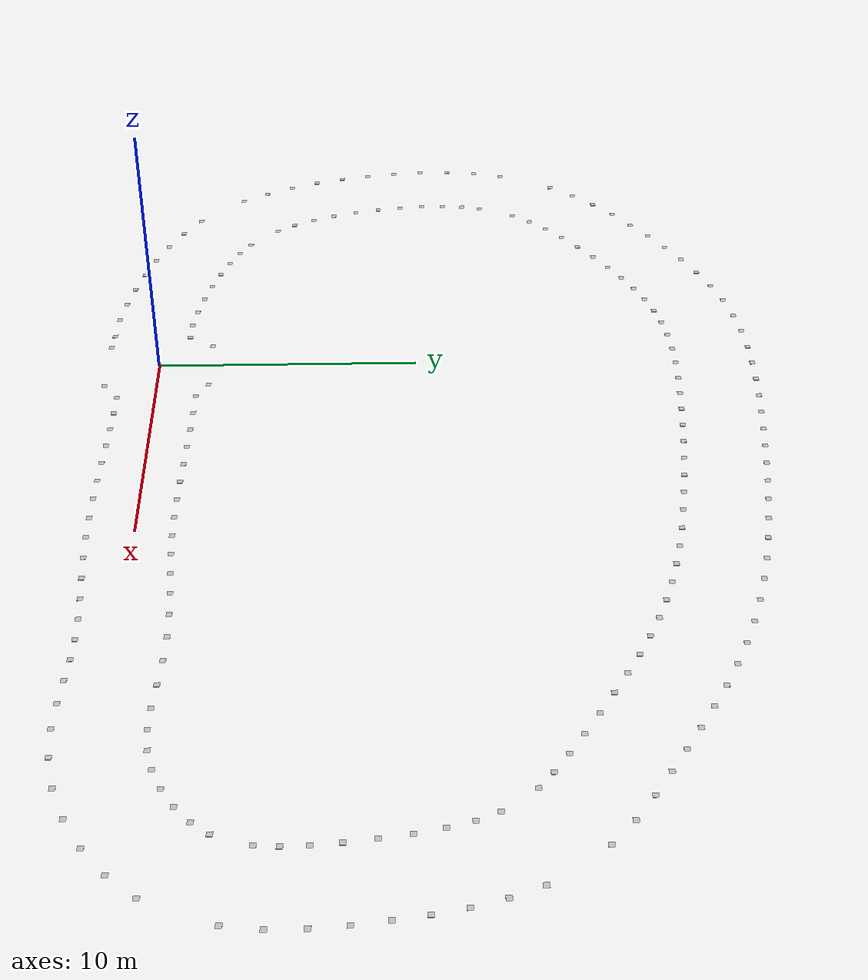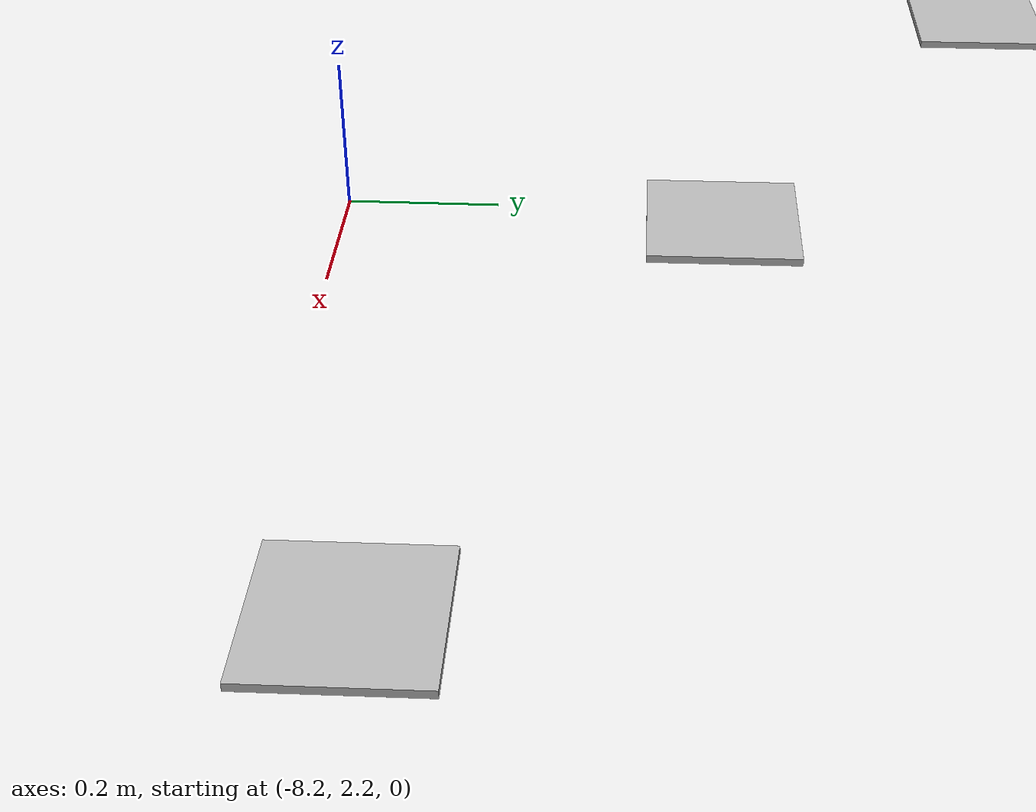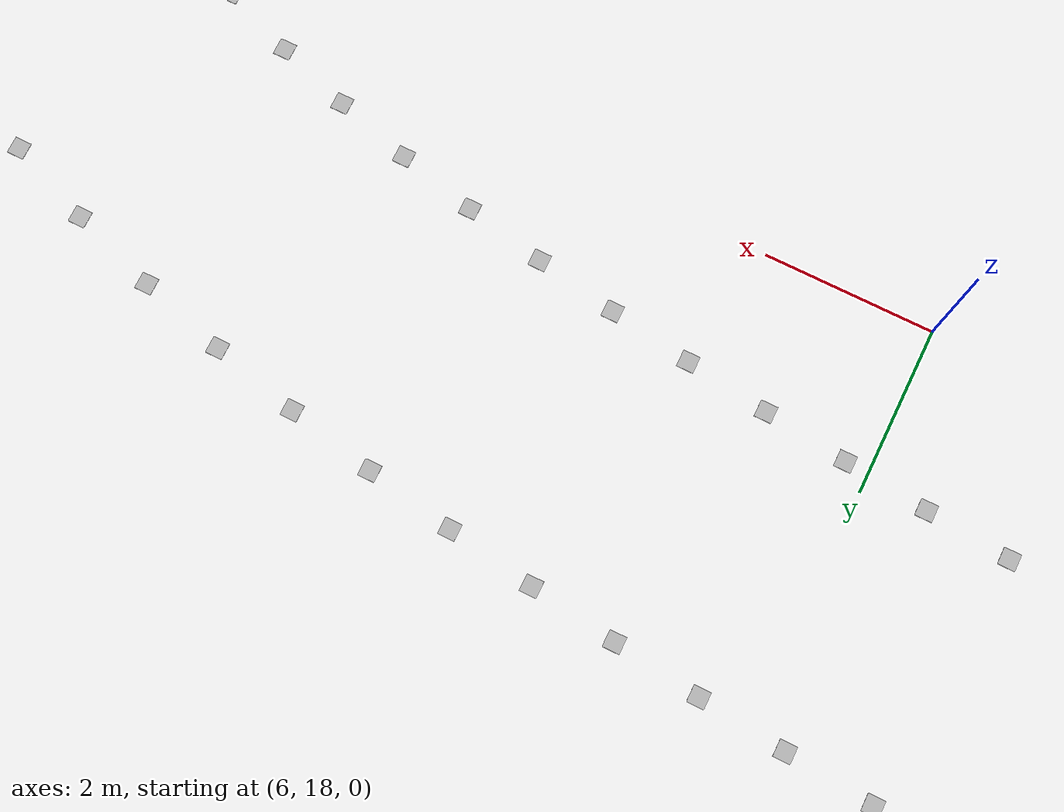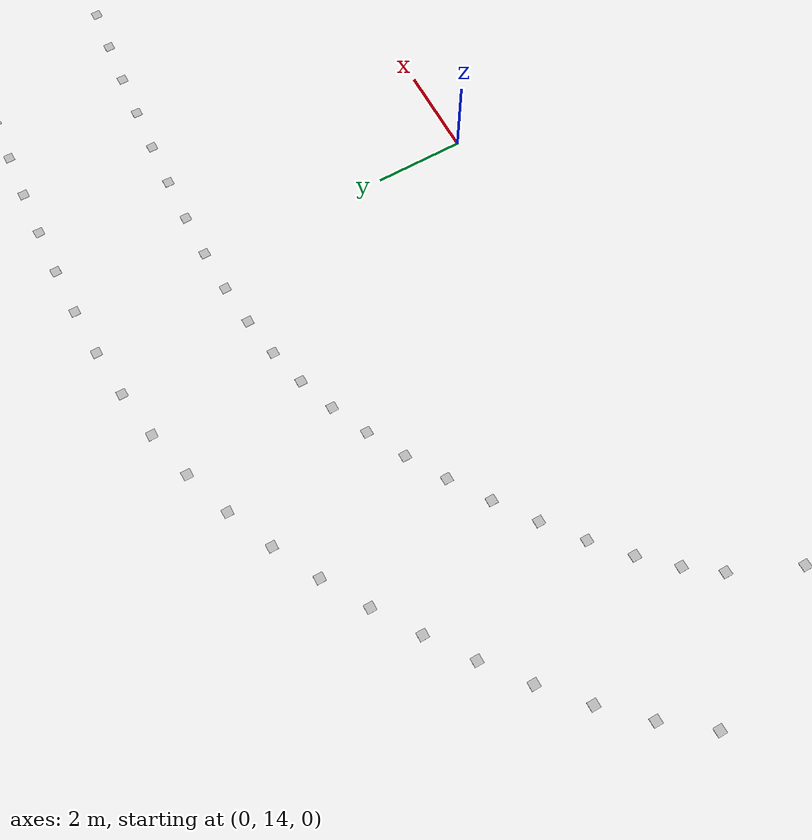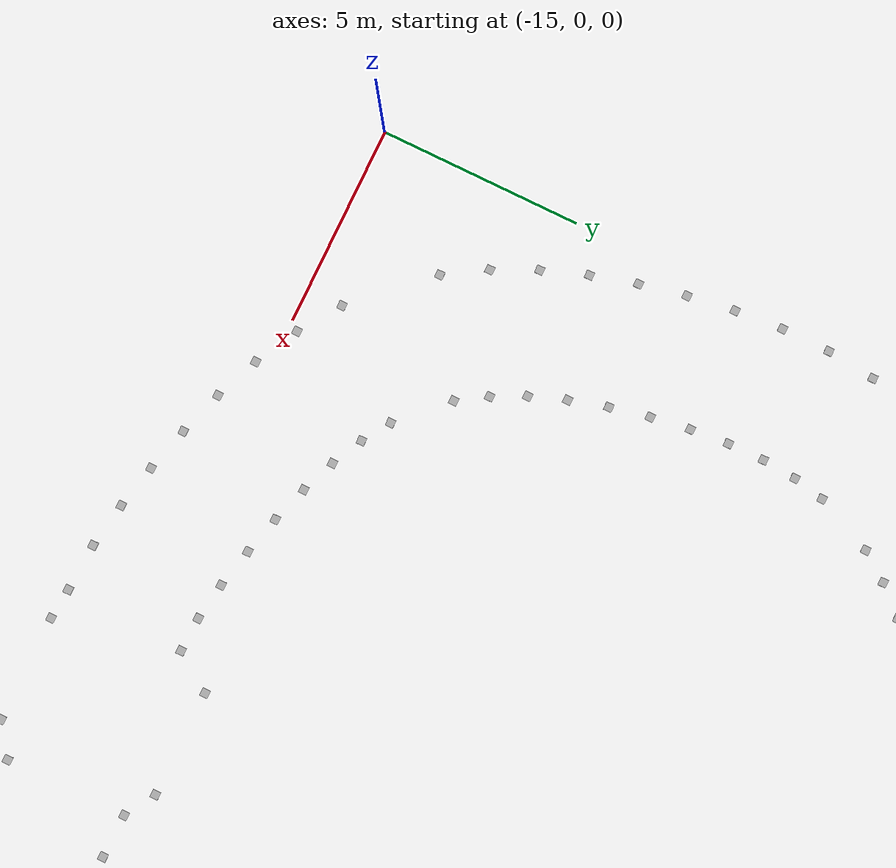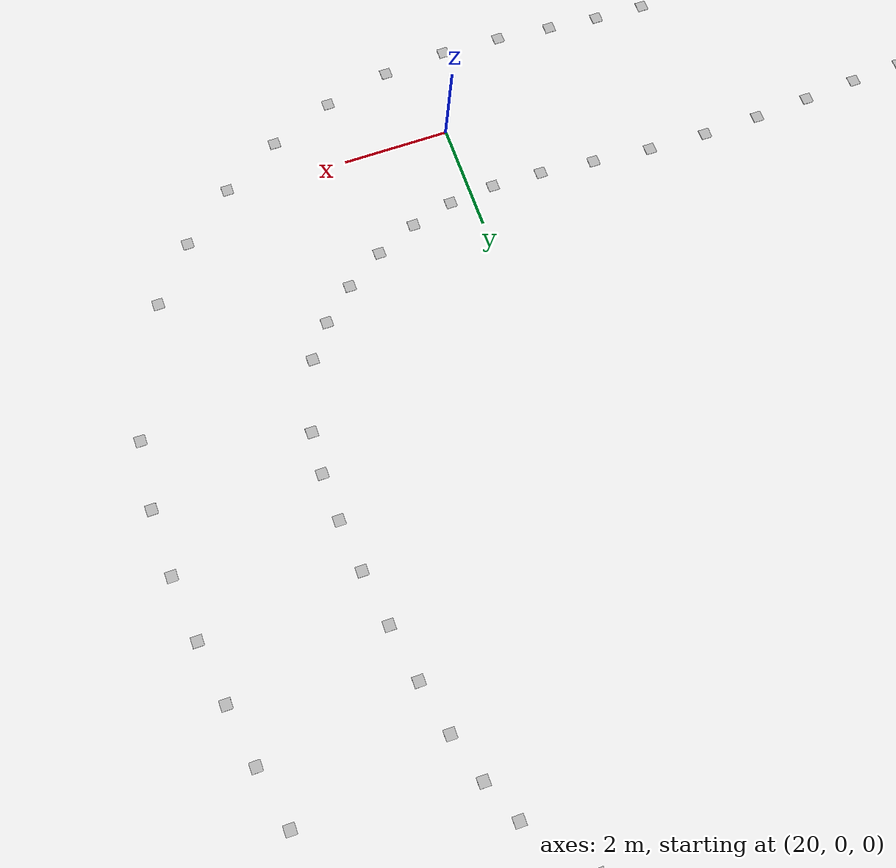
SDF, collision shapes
<?xml version='1.0' encoding='UTF-8'?>
<sdf version="1.4">
  <model name="some track">
    <include>
      <uri>model://cone_yellow</uri>
      <pose>2.0716251201298137 -1.4441487777763915 0 0 0 0</pose>
      <name>cone_right</name>
    </include>
    <include>
      <uri>model://cone_yellow</uri>
      <pose>3.061845030162147 -1.4576160737577932 0 0 0 0</pose>
      <name>cone_right</name>
    </include>
    <include>
      <uri>model://cone_yellow</uri>
      <pose>4.062345882485207 -1.4886577075095835 0 0 0 0</pose>
      <name>cone_right</name>
    </include>
    <include>
      <uri>model://cone_yellow</uri>
      <pose>5.073162139944026 -1.5307270625094536 0 0 0 0</pose>
      <name>cone_right</name>
    </include>
    <include>
      <uri>model://cone_yellow</uri>
      <pose>6.094304778852414 -1.5770616640211572 0 0 0 0</pose>
      <name>cone_right</name>
    </include>
    <include>
      <uri>model://cone_yellow</uri>
      <pose>7.125795829590808 -1.6206844722391436 0 0 0 0</pose>
      <name>cone_right</name>
    </include>
    <include>
      <uri>model://cone_yellow</uri>
      <pose>8.167680632697863 -1.654404963001182 0 0 0 0</pose>
      <name>cone_right</name>
    </include>
    <include>
      <uri>model://cone_yellow</uri>
      <pose>9.220017988063077 -1.6708182171101507 0 0 0 0</pose>
      <name>cone_right</name>
    </include>
    <include>
      <uri>model://cone_yellow</uri>
      <pose>10.282848042903979 -1.6623034479508214 0 0 0 0</pose>
      <name>cone_right</name>
    </include>
    <include>
      <uri>model://cone_yellow</uri>
      <pose>11.35571622601062 -1.6213299625687487 0 0 0 0</pose>
      <name>cone_right</name>
    </include>
    <include>
      <uri>model://cone_yellow</uri>
      <pose>12.421343697211151 -1.5530957398543737 0 0 0 0</pose>
      <name>cone_right</name>
    </include>
    <include>
      <uri>model://cone_yellow</uri>
      <pose>13.456973326948876 -1.4803363522671682 0 0 0 0</pose>
      <name>cone_right</name>
    </include>
    <include>
      <uri>model://cone_yellow</uri>
      <pose>14.460785571185642 -1.4251545002188355 0 0 0 0</pose>
      <name>cone_right</name>
    </include>
    <include>
      <uri>model://cone_yellow</uri>
      <pose>15.432162505420052 -1.4076473400622496 0 0 0 0</pose>
      <name>cone_right</name>
    </include>
    <include>
      <uri>model://cone_yellow</uri>
      <pose>16.3709793985687 -1.4456499326871088 0 0 0 0</pose>
      <name>cone_right</name>
    </include>
    <include>
      <uri>model://cone_yellow</uri>
      <pose>17.31671447327752 -1.532724382322282 0 0 0 0</pose>
      <name>cone_right</name>
    </include>
    <include>
      <uri>model://cone_yellow</uri>
      <pose>18.340652942843306 -1.6250135775647694 0 0 0 0</pose>
      <name>cone_right</name>
    </include>
    <include>
      <uri>model://cone_yellow</uri>
      <pose>19.451897274874245 -1.6648254026640625 0 0 0 0</pose>
      <name>cone_right</name>
    </include>
    <include>
      <uri>model://cone_yellow</uri>
      <pose>20.651843758167303 -1.5799661499556616 0 0 0 0</pose>
      <name>cone_right</name>
    </include>
    <include>
      <uri>model://cone_yellow</uri>
      <pose>21.913551635636683 -1.299011338005005 0 0 0 0</pose>
      <name>cone_right</name>
    </include>
    <include>
      <uri>model://cone_yellow</uri>
      <pose>23.134147333511585 -0.8213676918417518 0 0 0 0</pose>
      <name>cone_right</name>
    </include>
    <include>
      <uri>model://cone_yellow</uri>
      <pose>24.26431419130211 -0.16816303440160096 0 0 0 0</pose>
      <name>cone_right</name>
    </include>
    <include>
      <uri>model://cone_yellow</uri>
      <pose>25.272579495454938 0.6508334851052742 0 0 0 0</pose>
      <name>cone_right</name>
    </include>
    <include>
      <uri>model://cone_yellow</uri>
      <pose>26.120314486289722 1.6343724443564824 0 0 0 0</pose>
      <name>cone_right</name>
    </include>
    <include>
      <uri>model://cone_yellow</uri>
      <pose>27.139575334451358 4.030267823359424 0 0 0 0</pose>
      <name>cone_right</name>
    </include>
    <include>
      <uri>model://cone_yellow</uri>
      <pose>27.299594686831853 5.287100350878047 0 0 0 0</pose>
      <name>cone_right</name>
    </include>
    <include>
      <uri>model://cone_yellow</uri>
      <pose>27.302394032517945 6.52083936754214 0 0 0 0</pose>
      <name>cone_right</name>
    </include>
    <include>
      <uri>model://cone_yellow</uri>
      <pose>27.206839844030117 7.71827356065557 0 0 0 0</pose>
      <name>cone_right</name>
    </include>
    <include>
      <uri>model://cone_yellow</uri>
      <pose>27.061615684889812 8.87011662512248 0 0 0 0</pose>
      <name>cone_right</name>
    </include>
    <include>
      <uri>model://cone_yellow</uri>
      <pose>26.892266175085712 9.982359311254315 0 0 0 0</pose>
      <name>cone_right</name>
    </include>
    <include>
      <uri>model://cone_yellow</uri>
      <pose>26.67027468609427 11.096155942112299 0 0 0 0</pose>
      <name>cone_right</name>
    </include>
    <include>
      <uri>model://cone_yellow</uri>
      <pose>26.358829310628582 12.207481706875793 0 0 0 0</pose>
      <name>cone_right</name>
    </include>
    <include>
      <uri>model://cone_yellow</uri>
      <pose>25.91643702714781 13.300196066862279 0 0 0 0</pose>
      <name>cone_right</name>
    </include>
    <include>
      <uri>model://cone_yellow</uri>
      <pose>24.477653171521983 15.308733241543843 0 0 0 0</pose>
      <name>cone_right</name>
    </include>
    <include>
      <uri>model://cone_yellow</uri>
      <pose>23.552839605402543 16.11880605582471 0 0 0 0</pose>
      <name>cone_right</name>
    </include>
    <include>
      <uri>model://cone_yellow</uri>
      <pose>22.593851204817366 16.809135771965824 0 0 0 0</pose>
      <name>cone_right</name>
    </include>
    <include>
      <uri>model://cone_yellow</uri>
      <pose>21.64662374100653 17.422318195047303 0 0 0 0</pose>
      <name>cone_right</name>
    </include>
    <include>
      <uri>model://cone_yellow</uri>
      <pose>20.74151680250537 17.992513445582027 0 0 0 0</pose>
      <name>cone_right</name>
    </include>
    <include>
      <uri>model://cone_yellow</uri>
      <pose>19.846047654276347 18.547137769146474 0 0 0 0</pose>
      <name>cone_right</name>
    </include>
    <include>
      <uri>model://cone_yellow</uri>
      <pose>18.938498328200364 19.088711131437183 0 0 0 0</pose>
      <name>cone_right</name>
    </include>
    <include>
      <uri>model://cone_yellow</uri>
      <pose>18.012481687637848 19.60949029684587 0 0 0 0</pose>
      <name>cone_right</name>
    </include>
    <include>
      <uri>model://cone_yellow</uri>
      <pose>17.061624678691892 20.10124937918837 0 0 0 0</pose>
      <name>cone_right</name>
    </include>
    <include>
      <uri>model://cone_yellow</uri>
      <pose>16.079677520711485 20.55524486814049 0 0 0 0</pose>
      <name>cone_right</name>
    </include>
    <include>
      <uri>model://cone_yellow</uri>
      <pose>15.061514449694114 20.962300505489935 0 0 0 0</pose>
      <name>cone_right</name>
    </include>
    <include>
      <uri>model://cone_yellow</uri>
      <pose>14.017685046074325 21.315924936638037 0 0 0 0</pose>
      <name>cone_right</name>
    </include>
    <include>
      <uri>model://cone_yellow</uri>
      <pose>12.962745353143784 21.618292049228685 0 0 0 0</pose>
      <name>cone_right</name>
    </include>
    <include>
      <uri>model://cone_yellow</uri>
      <pose>11.901647526121101 21.87612590052893 0 0 0 0</pose>
      <name>cone_right</name>
    </include>
    <include>
      <uri>model://cone_yellow</uri>
      <pose>10.838729707987193 22.096094820643074 0 0 0 0</pose>
      <name>cone_right</name>
    </include>
    <include>
      <uri>model://cone_yellow</uri>
      <pose>9.778204659344329 22.284647540875856 0 0 0 0</pose>
      <name>cone_right</name>
    </include>
    <include>
      <uri>model://cone_yellow</uri>
      <pose>8.724251800485309 22.448020448896642 0 0 0 0</pose>
      <name>cone_right</name>
    </include>
    <include>
      <uri>model://cone_yellow</uri>
      <pose>7.680211030991361 22.59204222307179 0 0 0 0</pose>
      <name>cone_right</name>
    </include>
    <include>
      <uri>model://cone_yellow</uri>
      <pose>6.64126703104709 22.720087029250045 0 0 0 0</pose>
      <name>cone_right</name>
    </include>
    <include>
      <uri>model://cone_yellow</uri>
      <pose>5.602487196464713 22.833348389018767 0 0 0 0</pose>
      <name>cone_right</name>
    </include>
    <include>
      <uri>model://cone_yellow</uri>
      <pose>4.561644172842612 22.93258704792671 0 0 0 0</pose>
      <name>cone_right</name>
    </include>
    <include>
      <uri>model://cone_yellow</uri>
      <pose>3.5165319409048683 23.01856802739387 0 0 0 0</pose>
      <name>cone_right</name>
    </include>
    <include>
      <uri>model://cone_yellow</uri>
      <pose>2.4648798950036444 23.092009169601212 0 0 0 0</pose>
      <name>cone_right</name>
    </include>
    <include>
      <uri>model://cone_yellow</uri>
      <pose>1.400372728892134 23.148962350649498 0 0 0 0</pose>
      <name>cone_right</name>
    </include>
    <include>
      <uri>model://cone_yellow</uri>
      <pose>0.3162808114488203 23.176341464087237 0 0 0 0</pose>
      <name>cone_right</name>
    </include>
    <include>
      <uri>model://cone_yellow</uri>
      <pose>-0.783234369967022 23.158515009258302 0 0 0 0</pose>
      <name>cone_right</name>
    </include>
    <include>
      <uri>model://cone_yellow</uri>
      <pose>-1.8930977472436266 23.07880857968537 0 0 0 0</pose>
      <name>cone_right</name>
    </include>
    <include>
      <uri>model://cone_yellow</uri>
      <pose>-3.00800353027813 22.919396952791274 0 0 0 0</pose>
      <name>cone_right</name>
    </include>
    <include>
      <uri>model://cone_yellow</uri>
      <pose>-4.121374624998147 22.661489100813466 0 0 0 0</pose>
      <name>cone_right</name>
    </include>
    <include>
      <uri>model://cone_yellow</uri>
      <pose>-5.214187177189532 22.299628399681776 0 0 0 0</pose>
      <name>cone_right</name>
    </include>
    <include>
      <uri>model://cone_yellow</uri>
      <pose>-6.2653097750355204 21.851182804161436 0 0 0 0</pose>
      <name>cone_right</name>
    </include>
    <include>
      <uri>model://cone_yellow</uri>
      <pose>-7.2758507140374995 21.332107555556256 0 0 0 0</pose>
      <name>cone_right</name>
    </include>
    <include>
      <uri>model://cone_yellow</uri>
      <pose>-8.250108701838691 20.75682353885198 0 0 0 0</pose>
      <name>cone_right</name>
    </include>
    <include>
      <uri>model://cone_yellow</uri>
      <pose>-9.192987499467256 20.13861249710184 0 0 0 0</pose>
      <name>cone_right</name>
    </include>
    <include>
      <uri>model://cone_yellow</uri>
      <pose>-10.110076828481457 19.485660231301754 0 0 0 0</pose>
      <name>cone_right</name>
    </include>
    <include>
      <uri>model://cone_yellow</uri>
      <pose>-11.006491248213234 18.782054744298307 0 0 0 0</pose>
      <name>cone_right</name>
    </include>
    <include>
      <uri>model://cone_yellow</uri>
      <pose>-11.86718396140158 18.013785369389097 0 0 0 0</pose>
      <name>cone_right</name>
    </include>
    <include>
      <uri>model://cone_yellow</uri>
      <pose>-12.668759995948617 17.16977570508259 0 0 0 0</pose>
      <name>cone_right</name>
    </include>
    <include>
      <uri>model://cone_yellow</uri>
      <pose>-13.385437218321353 16.237076538269967 0 0 0 0</pose>
      <name>cone_right</name>
    </include>
    <include>
      <uri>model://cone_yellow</uri>
      <pose>-14.437165709683361 14.06428357420228 0 0 0 0</pose>
      <name>cone_right</name>
    </include>
    <include>
      <uri>model://cone_yellow</uri>
      <pose>-14.718266383463234 12.874822815796728 0 0 0 0</pose>
      <name>cone_right</name>
    </include>
    <include>
      <uri>model://cone_yellow</uri>
      <pose>-14.84819951134848 11.670512868664673 0 0 0 0</pose>
      <name>cone_right</name>
    </include>
    <include>
      <uri>model://cone_yellow</uri>
      <pose>-14.853274272262231 10.466766811301918 0 0 0 0</pose>
      <name>cone_right</name>
    </include>
    <include>
      <uri>model://cone_yellow</uri>
      <pose>-14.757433041779478 9.274354674983343 0 0 0 0</pose>
      <name>cone_right</name>
    </include>
    <include>
      <uri>model://cone_yellow</uri>
      <pose>-14.581804520974314 8.102286799799746 0 0 0 0</pose>
      <name>cone_right</name>
    </include>
    <include>
      <uri>model://cone_yellow</uri>
      <pose>-14.340616023978516 6.955049114178485 0 0 0 0</pose>
      <name>cone_right</name>
    </include>
    <include>
      <uri>model://cone_yellow</uri>
      <pose>-14.025560082955831 5.824134697594984 0 0 0 0</pose>
      <name>cone_right</name>
    </include>
    <include>
      <uri>model://cone_yellow</uri>
      <pose>-13.623127094716537 4.718184458827253 0 0 0 0</pose>
      <name>cone_right</name>
    </include>
    <include>
      <uri>model://cone_yellow</uri>
      <pose>-13.118994587222106 3.652311136018632 0 0 0 0</pose>
      <name>cone_right</name>
    </include>
    <include>
      <uri>model://cone_yellow</uri>
      <pose>-12.497031173863977 2.643603983258836 0 0 0 0</pose>
      <name>cone_right</name>
    </include>
    <include>
      <uri>model://cone_yellow</uri>
      <pose>-10.837861357922739 0.8887052711025505 0 0 0 0</pose>
      <name>cone_right</name>
    </include>
    <include>
      <uri>model://cone_yellow</uri>
      <pose>-9.830653103881767 0.20143531210545373 0 0 0 0</pose>
      <name>cone_right</name>
    </include>
    <include>
      <uri>model://cone_yellow</uri>
      <pose>-8.764734594793635 -0.354083084737837 0 0 0 0</pose>
      <name>cone_right</name>
    </include>
    <include>
      <uri>model://cone_yellow</uri>
      <pose>-7.665925527100748 -0.8012141576592852 0 0 0 0</pose>
      <name>cone_right</name>
    </include>
    <include>
      <uri>model://cone_yellow</uri>
      <pose>-6.554692456201597 -1.1620509166026736 0 0 0 0</pose>
      <name>cone_right</name>
    </include>
    <include>
      <uri>model://cone_yellow</uri>
      <pose>-5.449299480400102 -1.45611890128348 0 0 0 0</pose>
      <name>cone_right</name>
    </include>
    <include>
      <uri>model://cone_yellow</uri>
      <pose>-4.361013515016675 -1.6980760271015654 0 0 0 0</pose>
      <name>cone_right</name>
    </include>
    <include>
      <uri>model://cone_yellow</uri>
      <pose>-3.2438721230780767 -1.8735676481214987 0 0 0 0</pose>
      <name>cone_right</name>
    </include>
    <include>
      <uri>model://cone_yellow</uri>
      <pose>-2.0653111692288677 -1.9330403144988475 0 0 0 0</pose>
      <name>cone_right</name>
    </include>
    <include>
      <uri>model://cone_blue</uri>
      <pose>2.037398518527662 1.55565597249366 0 0 0 0</pose>
      <name>cone_left</name>
    </include>
    <include>
      <uri>model://cone_blue</uri>
      <pose>3.1012727933827073 1.5421248236344172 0 0 0 0</pose>
      <name>cone_left</name>
    </include>
    <include>
      <uri>model://cone_blue</uri>
      <pose>4.154680302801099 1.5099210149562665 0 0 0 0</pose>
      <name>cone_left</name>
    </include>
    <include>
      <uri>model://cone_blue</uri>
      <pose>5.197656033799037 1.466688702844565 0 0 0 0</pose>
      <name>cone_left</name>
    </include>
    <include>
      <uri>model://cone_blue</uri>
      <pose>6.230258459923957 1.4198561854707332 0 0 0 0</pose>
      <name>cone_left</name>
    </include>
    <include>
      <uri>model://cone_blue</uri>
      <pose>7.252535000656645 1.3766371959368873 0 0 0 0</pose>
      <name>cone_left</name>
    </include>
    <include>
      <uri>model://cone_blue</uri>
      <pose>8.264509765319687 1.3440319829884624 0 0 0 0</pose>
      <name>cone_left</name>
    </include>
    <include>
      <uri>model://cone_blue</uri>
      <pose>9.26619340388482 1.3288264003360044 0 0 0 0</pose>
      <name>cone_left</name>
    </include>
    <include>
      <uri>model://cone_blue</uri>
      <pose>10.257615218995745 1.337590434271951 0 0 0 0</pose>
      <name>cone_left</name>
    </include>
    <include>
      <uri>model://cone_blue</uri>
      <pose>11.239291865925063 1.3764100809271296 0 0 0 0</pose>
      <name>cone_left</name>
    </include>
    <include>
      <uri>model://cone_blue</uri>
      <pose>12.228263835662348 1.4406845071016874 0 0 0 0</pose>
      <name>cone_left</name>
    </include>
    <include>
      <uri>model://cone_blue</uri>
      <pose>13.246651283742022 1.5122820059838955 0 0 0 0</pose>
      <name>cone_left</name>
    </include>
    <include>
      <uri>model://cone_blue</uri>
      <pose>14.295609282415786 1.5702948473128864 0 0 0 0</pose>
      <name>cone_left</name>
    </include>
    <include>
      <uri>model://cone_blue</uri>
      <pose>15.375091284398568 1.5918097567689615 0 0 0 0</pose>
      <name>cone_left</name>
    </include>
    <include>
      <uri>model://cone_blue</uri>
      <pose>16.484573157577614 1.5521987055723723 0 0 0 0</pose>
      <name>cone_left</name>
    </include>
    <include>
      <uri>model://cone_blue</uri>
      <pose>17.58542941522287 1.4552167616722425 0 0 0 0</pose>
      <name>cone_left</name>
    </include>
    <include>
      <uri>model://cone_blue</uri>
      <pose>18.609955951177902 1.362874621431628 0 0 0 0</pose>
      <name>cone_left</name>
    </include>
    <include>
      <uri>model://cone_blue</uri>
      <pose>19.55292014657623 1.3334731780968805 0 0 0 0</pose>
      <name>cone_left</name>
    </include>
    <include>
      <uri>model://cone_blue</uri>
      <pose>20.41679556136264 1.4108117330003556 0 0 0 0</pose>
      <name>cone_left</name>
    </include>
    <include>
      <uri>model://cone_blue</uri>
      <pose>21.221076359380614 1.6199744433536645 0 0 0 0</pose>
      <name>cone_left</name>
    </include>
    <include>
      <uri>model://cone_blue</uri>
      <pose>22.003399095925175 1.957374545789373 0 0 0 0</pose>
      <name>cone_left</name>
    </include>
    <include>
      <uri>model://cone_blue</uri>
      <pose>22.729443715079025 2.4094662293248015 0 0 0 0</pose>
      <name>cone_left</name>
    </include>
    <include>
      <uri>model://cone_blue</uri>
      <pose>23.3470384291475 2.951331605505206 0 0 0 0</pose>
      <name>cone_left</name>
    </include>
    <include>
      <uri>model://cone_blue</uri>
      <pose>23.811167496562987 3.549533058988045 0 0 0 0</pose>
      <name>cone_left</name>
    </include>
    <include>
      <uri>model://cone_blue</uri>
      <pose>24.251140496207128 4.840788757831223 0 0 0 0</pose>
      <name>cone_left</name>
    </include>
    <include>
      <uri>model://cone_blue</uri>
      <pose>24.31806809196307 5.619514496320397 0 0 0 0</pose>
      <name>cone_left</name>
    </include>
    <include>
      <uri>model://cone_blue</uri>
      <pose>24.302449041812665 6.502672013791071 0 0 0 0</pose>
      <name>cone_left</name>
    </include>
    <include>
      <uri>model://cone_blue</uri>
      <pose>24.21725704109036 7.468484320761471 0 0 0 0</pose>
      <name>cone_left</name>
    </include>
    <include>
      <uri>model://cone_blue</uri>
      <pose>24.085635261293273 8.491249209830313 0 0 0 0</pose>
      <name>cone_left</name>
    </include>
    <include>
      <uri>model://cone_blue</uri>
      <pose>23.92663407838472 9.529561048208974 0 0 0 0</pose>
      <name>cone_left</name>
    </include>
    <include>
      <uri>model://cone_blue</uri>
      <pose>23.7289891741751 10.505529548040387 0 0 0 0</pose>
      <name>cone_left</name>
    </include>
    <include>
      <uri>model://cone_blue</uri>
      <pose>23.473438972194774 11.386188461516472 0 0 0 0</pose>
      <name>cone_left</name>
    </include>
    <include>
      <uri>model://cone_blue</uri>
      <pose>23.14540301022797 12.150687268691039 0 0 0 0</pose>
      <name>cone_left</name>
    </include>
    <include>
      <uri>model://cone_blue</uri>
      <pose>22.23252710204449 13.318906884257226 0 0 0 0</pose>
      <name>cone_left</name>
    </include>
    <include>
      <uri>model://cone_blue</uri>
      <pose>21.60237670678114 13.839399448590845 0 0 0 0</pose>
      <name>cone_left</name>
    </include>
    <include>
      <uri>model://cone_blue</uri>
      <pose>20.853394288562438 14.36561173429802 0 0 0 0</pose>
      <name>cone_left</name>
    </include>
    <include>
      <uri>model://cone_blue</uri>
      <pose>20.01987572929999 14.901665321998571 0 0 0 0</pose>
      <name>cone_left</name>
    </include>
    <include>
      <uri>model://cone_blue</uri>
      <pose>19.14266467482169 15.454074580097696 0 0 0 0</pose>
      <name>cone_left</name>
    </include>
    <include>
      <uri>model://cone_blue</uri>
      <pose>18.266498899886187 15.996642575560628 0 0 0 0</pose>
      <name>cone_left</name>
    </include>
    <include>
      <uri>model://cone_blue</uri>
      <pose>17.401694071937474 16.512234335901805 0 0 0 0</pose>
      <name>cone_left</name>
    </include>
    <include>
      <uri>model://cone_blue</uri>
      <pose>16.543171337884463 16.993935461613475 0 0 0 0</pose>
      <name>cone_left</name>
    </include>
    <include>
      <uri>model://cone_blue</uri>
      <pose>15.685837761893403 17.435314203763784 0 0 0 0</pose>
      <name>cone_left</name>
    </include>
    <include>
      <uri>model://cone_blue</uri>
      <pose>14.824477134884699 17.83045643756092 0 0 0 0</pose>
      <name>cone_left</name>
    </include>
    <include>
      <uri>model://cone_blue</uri>
      <pose>13.953249728608357 18.174514769821442 0 0 0 0</pose>
      <name>cone_left</name>
    </include>
    <include>
      <uri>model://cone_blue</uri>
      <pose>13.060672791310191 18.472664916127908 0 0 0 0</pose>
      <name>cone_left</name>
    </include>
    <include>
      <uri>model://cone_blue</uri>
      <pose>12.140530612110378 18.733164163046276 0 0 0 0</pose>
      <name>cone_left</name>
    </include>
    <include>
      <uri>model://cone_blue</uri>
      <pose>11.1965598078845 18.96016099854676 0 0 0 0</pose>
      <name>cone_left</name>
    </include>
    <include>
      <uri>model://cone_blue</uri>
      <pose>10.233111007745881 19.157859637762364 0 0 0 0</pose>
      <name>cone_left</name>
    </include>
    <include>
      <uri>model://cone_blue</uri>
      <pose>9.254660223186448 19.330683894625597 0 0 0 0</pose>
      <name>cone_left</name>
    </include>
    <include>
      <uri>model://cone_blue</uri>
      <pose>8.265716806007632 19.483269926704367 0 0 0 0</pose>
      <name>cone_left</name>
    </include>
    <include>
      <uri>model://cone_blue</uri>
      <pose>7.270833698765128 19.620105110705627 0 0 0 0</pose>
      <name>cone_left</name>
    </include>
    <include>
      <uri>model://cone_blue</uri>
      <pose>6.274750874178635 19.74256021883265 0 0 0 0</pose>
      <name>cone_left</name>
    </include>
    <include>
      <uri>model://cone_blue</uri>
      <pose>5.27773555933031 19.8509774573306 0 0 0 0</pose>
      <name>cone_left</name>
    </include>
    <include>
      <uri>model://cone_blue</uri>
      <pose>4.277294560335048 19.946093234461358 0 0 0 0</pose>
      <name>cone_left</name>
    </include>
    <include>
      <uri>model://cone_blue</uri>
      <pose>3.270913348182061 20.02863968261554 0 0 0 0</pose>
      <name>cone_left</name>
    </include>
    <include>
      <uri>model://cone_blue</uri>
      <pose>2.2562115288401063 20.09927504960949 0 0 0 0</pose>
      <name>cone_left</name>
    </include>
    <include>
      <uri>model://cone_blue</uri>
      <pose>1.240659551687094 20.153216750464615 0 0 0 0</pose>
      <name>cone_left</name>
    </include>
    <include>
      <uri>model://cone_blue</uri>
      <pose>0.2422327562258874 20.17725545573107 0 0 0 0</pose>
      <name>cone_left</name>
    </include>
    <include>
      <uri>model://cone_blue</uri>
      <pose>-0.7309752670803099 20.15897021276576 0 0 0 0</pose>
      <name>cone_left</name>
    </include>
    <include>
      <uri>model://cone_blue</uri>
      <pose>-1.6717845085208212 20.0869829747468 0 0 0 0</pose>
      <name>cone_left</name>
    </include>
    <include>
      <uri>model://cone_blue</uri>
      <pose>-2.573245680376058 19.951066510952202 0 0 0 0</pose>
      <name>cone_left</name>
    </include>
    <include>
      <uri>model://cone_blue</uri>
      <pose>-3.4298024952731816 19.742289212250217 0 0 0 0</pose>
      <name>cone_left</name>
    </include>
    <include>
      <uri>model://cone_blue</uri>
      <pose>-4.255223572476255 19.457025929262226 0 0 0 0</pose>
      <name>cone_left</name>
    </include>
    <include>
      <uri>model://cone_blue</uri>
      <pose>-5.075809507533435 19.097078754999085 0 0 0 0</pose>
      <name>cone_left</name>
    </include>
    <include>
      <uri>model://cone_blue</uri>
      <pose>-5.896490806540584 18.668019297710792 0 0 0 0</pose>
      <name>cone_left</name>
    </include>
    <include>
      <uri>model://cone_blue</uri>
      <pose>-6.71900756345174 18.176953521965434 0 0 0 0</pose>
      <name>cone_left</name>
    </include>
    <include>
      <uri>model://cone_blue</uri>
      <pose>-7.544494818835991 17.632126534263598 0 0 0 0</pose>
      <name>cone_left</name>
    </include>
    <include>
      <uri>model://cone_blue</uri>
      <pose>-8.367750364944879 17.04346890086507 0 0 0 0</pose>
      <name>cone_left</name>
    </include>
    <include>
      <uri>model://cone_blue</uri>
      <pose>-9.150732522629944 16.42490401674152 0 0 0 0</pose>
      <name>cone_left</name>
    </include>
    <include>
      <uri>model://cone_blue</uri>
      <pose>-9.863395129704092 15.78111201263392 0 0 0 0</pose>
      <name>cone_left</name>
    </include>
    <include>
      <uri>model://cone_blue</uri>
      <pose>-10.484022294458244 15.11382794901325 0 0 0 0</pose>
      <name>cone_left</name>
    </include>
    <include>
      <uri>model://cone_blue</uri>
      <pose>-10.993285286618402 14.426659697967757 0 0 0 0</pose>
      <name>cone_left</name>
    </include>
    <include>
      <uri>model://cone_blue</uri>
      <pose>-11.632183579214326 13.000293326244437 0 0 0 0</pose>
      <name>cone_left</name>
    </include>
    <include>
      <uri>model://cone_blue</uri>
      <pose>-11.790272152124757 12.221485398187271 0 0 0 0</pose>
      <name>cone_left</name>
    </include>
    <include>
      <uri>model://cone_blue</uri>
      <pose>-11.862711408421543 11.375791326727658 0 0 0 0</pose>
      <name>cone_left</name>
    </include>
    <include>
      <uri>model://cone_blue</uri>
      <pose>-11.853280685942648 10.472970200807547 0 0 0 0</pose>
      <name>cone_left</name>
    </include>
    <include>
      <uri>model://cone_blue</uri>
      <pose>-11.768126125874147 9.527424156589802 0 0 0 0</pose>
      <name>cone_left</name>
    </include>
    <include>
      <uri>model://cone_blue</uri>
      <pose>-11.616207543903032 8.555315021421393 0 0 0 0</pose>
      <name>cone_left</name>
    </include>
    <include>
      <uri>model://cone_blue</uri>
      <pose>-11.406117566007083 7.578522289353875 0 0 0 0</pose>
      <name>cone_left</name>
    </include>
    <include>
      <uri>model://cone_blue</uri>
      <pose>-11.137794939587739 6.637038429132899 0 0 0 0</pose>
      <name>cone_left</name>
    </include>
    <include>
      <uri>model://cone_blue</uri>
      <pose>-10.808016911950578 5.7550811069496195 0 0 0 0</pose>
      <name>cone_left</name>
    </include>
    <include>
      <uri>model://cone_blue</uri>
      <pose>-10.414373499360925 4.950396176028187 0 0 0 0</pose>
      <name>cone_left</name>
    </include>
    <include>
      <uri>model://cone_blue</uri>
      <pose>-9.956263632654139 4.238752973646412 0 0 0 0</pose>
      <name>cone_left</name>
    </include>
    <include>
      <uri>model://cone_blue</uri>
      <pose>-8.84510330671033 3.1312295963503565 0 0 0 0</pose>
      <name>cone_left</name>
    </include>
    <include>
      <uri>model://cone_blue</uri>
      <pose>-8.169558306316572 2.6995874438824288 0 0 0 0</pose>
      <name>cone_left</name>
    </include>
    <include>
      <uri>model://cone_blue</uri>
      <pose>-7.400040317650307 2.317547415524549 0 0 0 0</pose>
      <name>cone_left</name>
    </include>
    <include>
      <uri>model://cone_blue</uri>
      <pose>-6.5497523423796435 1.9834146186248263 0 0 0 0</pose>
      <name>cone_left</name>
    </include>
    <include>
      <uri>model://cone_blue</uri>
      <pose>-5.637250523216613 1.6942229322431923 0 0 0 0</pose>
      <name>cone_left</name>
    </include>
    <include>
      <uri>model://cone_blue</uri>
      <pose>-4.683293459967803 1.4444387652112705 0 0 0 0</pose>
      <name>cone_left</name>
    </include>
    <include>
      <uri>model://cone_blue</uri>
      <pose>-3.7131612328612382 1.2311367375343516 0 0 0 0</pose>
      <name>cone_left</name>
    </include>
    <include>
      <uri>model://cone_blue</uri>
      <pose>-2.786517720149242 1.0913652263499638 0 0 0 0</pose>
      <name>cone_left</name>
    </include>
    <include>
      <uri>model://cone_blue</uri>
      <pose>-1.9372917244332841 1.0642269444812773 0 0 0 0</pose>
      <name>cone_left</name>
    </include>
    <include>
      <uri>model://cone_orange_big</uri>
      <pose>-1.3 2.0 0 0 0 0</pose>
      <name>cone_orange_big</name>
    </include>
    <include>
      <uri>model://cone_orange_big</uri>
      <pose>-1.3 -2.0 0 0 0 0</pose>
      <name>cone_orange_big</name>
    </include>
    <include>
      <uri>model://cone_orange_big</uri>
      <pose>1.3 2.0 0 0 0 0</pose>
      <name>cone_orange_big</name>
    </include>
    <include>
      <uri>model://cone_orange_big</uri>
      <pose>1.3 -2.0 0 0 0 0</pose>
      <name>cone_orange_big</name>
    </include>
  </model>
</sdf>

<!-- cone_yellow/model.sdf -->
<sdf version='1.4'>
  <model name="cone_yellow">
    <link name="link">
    <collision name="collision"><geometry><box><size> 0.2 0.2 0.01</size>
             </box></geometry></collision>
      <visual name="visual">
        <geometry>
          <mesh>
            <uri>model://YellowCone.dae</uri>
            <scale>1 1 1</scale>
          </mesh>
        </geometry>
        <material>
            <script>
              <uri>model://cone_yellow/materials/scripts</uri>
              <uri>model://cone_yellow/materials/textures</uri>
              <name>cone_yellow/Image</name>
            </script>
        </material>
      </visual>
    </link>
  </model>
</sdf>

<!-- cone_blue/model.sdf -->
<sdf version='1.4'>
  <model name="cone_blue">
    <link name="link">
    <collision name="collision"><geometry><box><size> 0.2 0.2 0.01</size>
             </box></geometry></collision>
      <visual name="visual">
        <geometry>
          <mesh>
            <uri>model://BlueCone.dae</uri>
            <scale>1 1 1</scale>
          </mesh>
        </geometry>
        <material>
            <script>
              <uri>model://cone_blue/materials/scripts</uri>
              <uri>model://cone_blue/materials/textures</uri>
              <name>cone_blue/Image</name>
            </script>
        </material>
      </visual>
    </link>
  </model>
</sdf>

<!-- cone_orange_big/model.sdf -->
<sdf version='1.4'>
  <model name="cone_orange_big">
    <link name="link">
    <collision name="collision"><geometry><box><size> 0.2 0.2 0.01</size>
             </box></geometry></collision>
      <visual name="visual">
        <geometry>
          <mesh>
            <uri>model://BigOrangeCone.dae</uri>
            <scale>1 1 1</scale>
          </mesh>
        </geometry>
        <material>
            <script>
              <uri>model://cone_orange_big/materials/scripts</uri>
              <uri>model://cone_orange_big/materials/textures</uri>
              <name>cone_orange_big/Image</name>
            </script>
        </material>
      </visual>
    </link>
  </model>
</sdf>
